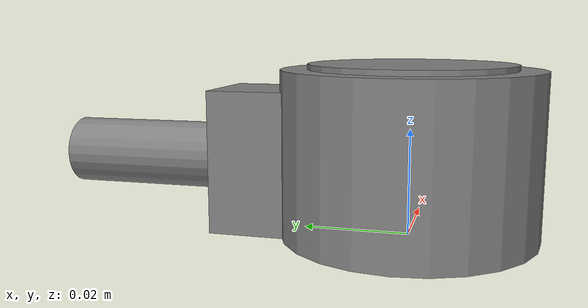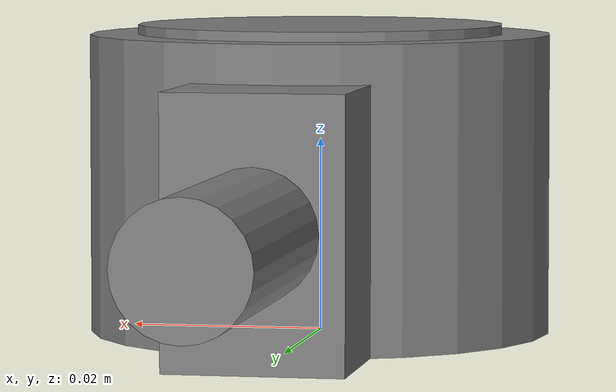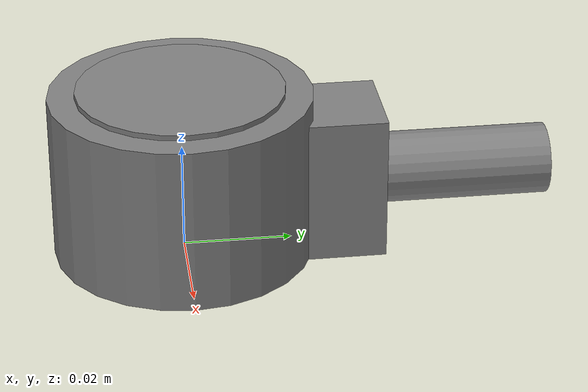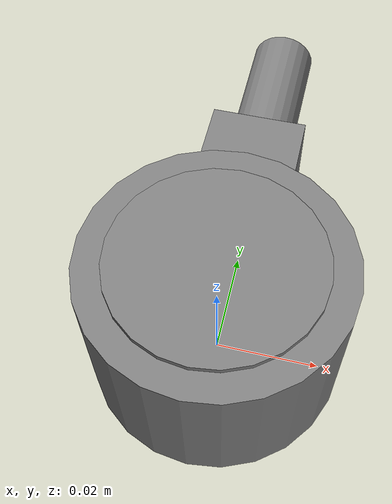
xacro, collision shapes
<?xml version="1.0"?>
<robot xmlns:xacro="http://wiki.ros.org/xacro"
       name="sensor" >

  <xacro:arg name="prefix" default="ft_sensor0"/>

  <xacro:include filename="$(find rokubimini_description)/urdf/BFT_MEDS_ECAT_M8.urdf.xacro" />

  <xacro:BFT_MEDS_ECAT_M8 prefix="$(arg prefix)" />

  <link name="world" />

  <joint name="world_joint" type="fixed">
    <parent link="world" />
    <child link = "$(arg prefix)_mounting" />
    <origin xyz="0.0 0.0 0.0" rpy="0.0 0.0 0.0" />
  </joint>

</robot>

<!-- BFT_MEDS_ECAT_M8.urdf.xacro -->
<robot xmlns:xacro="http://wiki.ros.org/xacro">
  <xacro:macro name="BFT_MEDS_ECAT_M8" params="prefix">
    <link
      name="${prefix}_mounting">
      <inertial>
        <origin
          xyz="-1.2694E-05 0.0034576 0.014679"
          rpy="0 0 0" />
        <mass
          value="0.077742" />
        <inertia
          ixx="1.8047E-05"
          ixy="-2.0356E-08"
          ixz="8.0069E-09"
          iyy="1.7736E-05"
          iyz="-1.2576E-08"
          izz="2.7646E-05" />
      </inertial>
      <visual>
        <origin
          xyz="0 0 0"
          rpy="0 0 0" />
        <geometry>
          <mesh
            filename="package://rokubimini_description/meshes/BFT_MEDS_M8/mounting.STL" />
        </geometry>
        <material name="Bota_material">
          <color rgba="0.50196 0.50196 0.50196 1" />
        </material>
      </visual>
      <collision>
        <origin
          xyz="0 0 0.0155"
          rpy="0 0 0" />
        <geometry>
          <cylinder radius="0.024" length="0.031"/>
        </geometry>
      </collision>
      <collision>
        <origin
          xyz="0 0.029 0.0135"
          rpy="0 0 0" />
        <geometry>
          <box size="0.018 0.015 0.027" />
        </geometry>
      </collision>
      <collision>
        <origin
          xyz="0 0.0515 0.0135"
          rpy="1.57 0 0" />
        <geometry>
          <cylinder radius="0.0065" length="0.032"/>
        </geometry>
      </collision>
      <collision>
        <origin
          xyz="0 0 0.023"
          rpy="0 0 0" />
        <geometry>
          <cylinder radius="0.019" length="0.018"/>
        </geometry>
      </collision>
    </link>
    <link
      name="${prefix}_imu">
      <inertial>
        <origin
          xyz="-7.28164825397966E-05 1.54951151716373E-05 -0.00279059266096019"
          rpy="0 0 0" />
        <mass
          value="0.00841533584597403" />
        <inertia
          ixx="4.36835040253873E-07"
          ixy="-6.98609475826415E-11"
          ixz="-6.08397666812333E-15"
          iyy="4.41035649008906E-07"
          iyz="1.10331483799463E-11"
          izz="8.74962095262397E-07" />
      </inertial>
    </link>
    <joint
      name="mounting_to_imu"
      type="fixed">
      <origin
        xyz="0 0 0.0098"
        rpy="0 0 0" />
      <parent
        link="${prefix}_mounting" />
      <child
        link="${prefix}_imu" />
      <axis
        xyz="0 0 0" />
    </joint>
    <link
      name="${prefix}_wrench">
      <inertial>
        <origin
          xyz="-7.59709164853891E-09 -7.25481053712924E-06 -0.00716049522817544"
          rpy="0 0 0" />
        <mass
          value="0.0269702356134771" />
        <inertia
          ixx="3.08057860883569E-06"
          ixy="3.28313268211071E-15"
          ixz="1.46228669281662E-12"
          iyy="3.08365849171961E-06"
          iyz="1.49625149931384E-09"
          izz="4.82247292142798E-06" />
      </inertial>
    </link>
    <joint
      name="mounting_to_wrench"
      type="fixed">
      <origin
        xyz="0 0 0.032"
        rpy="0 0 0" />
      <parent
        link="${prefix}_mounting" />
      <child
        link="${prefix}_wrench" />
      <axis
        xyz="0 0 0" />
    </joint>
  </xacro:macro>
</robot>
